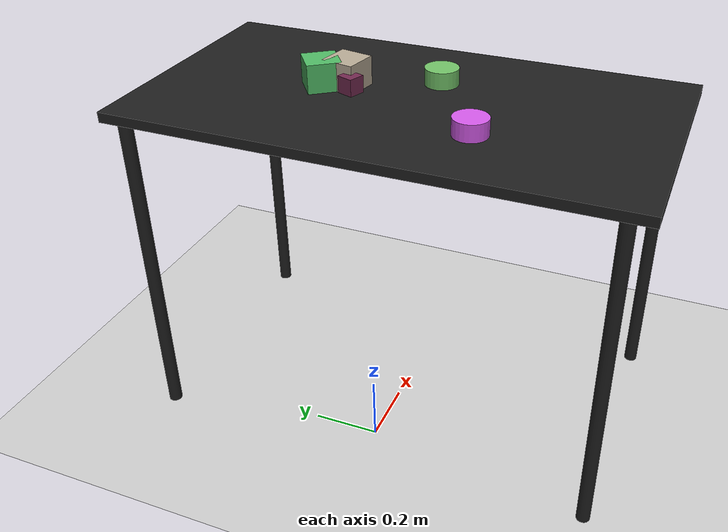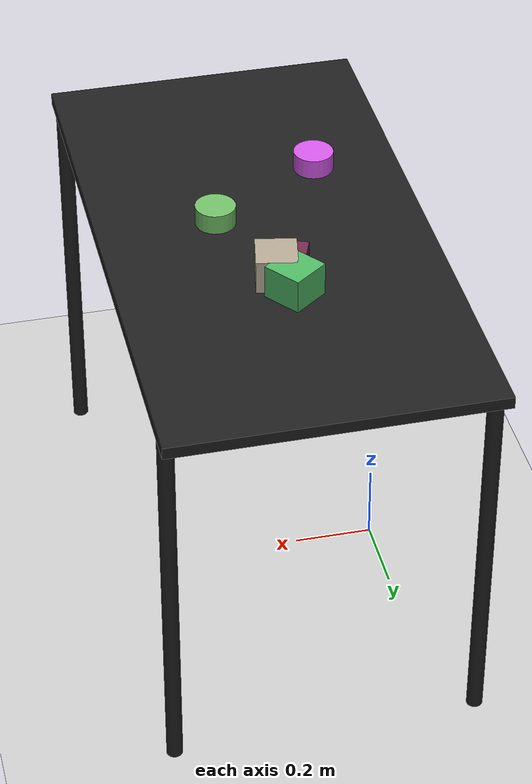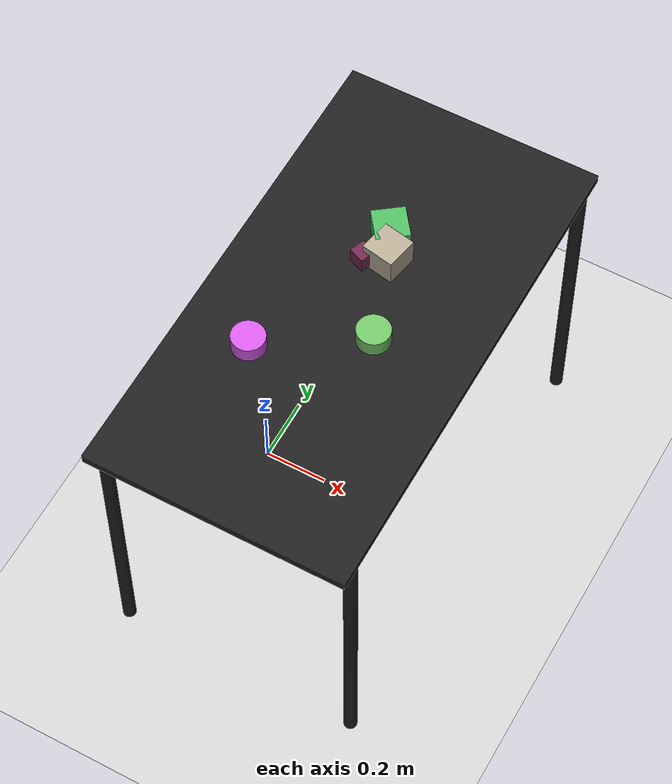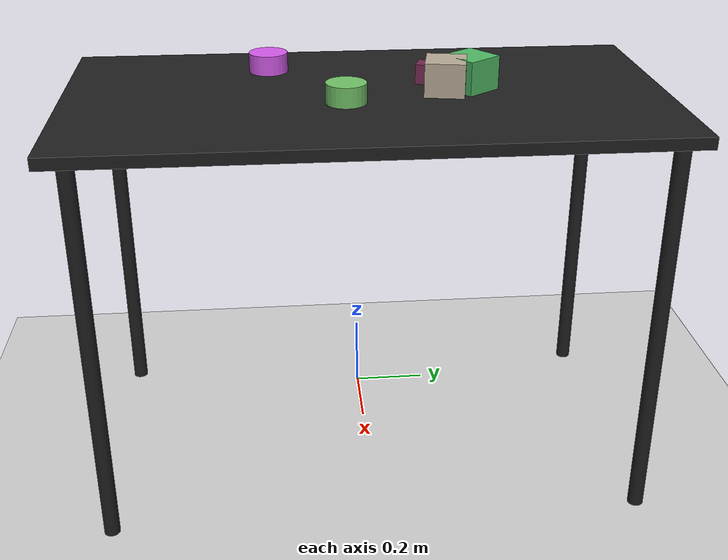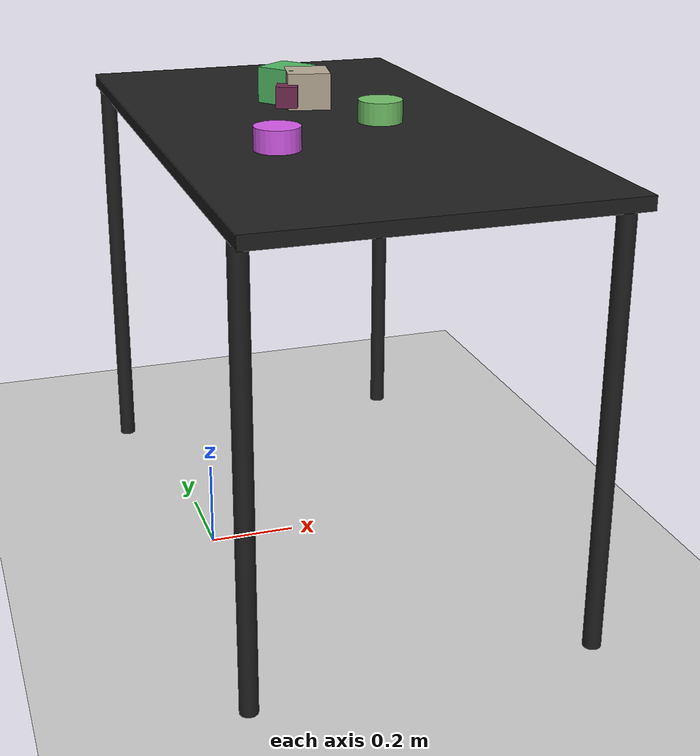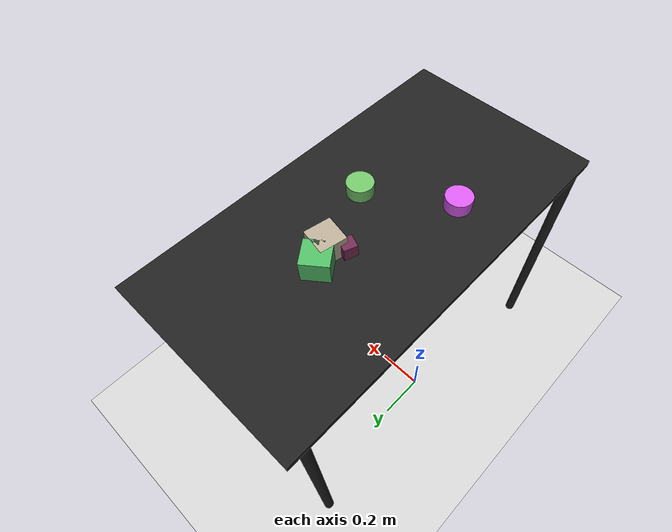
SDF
<?xml version="1.0" ?>
<sdf version="1.6">
  <world name="arm_world">
    <plugin filename="gz-sim-physics-system" name="gz::sim::systems::Physics">
      <engine>
        <filename>libgz-physics-bullet-featherstone-plugin.so</filename>
      </engine>
    </plugin>
    <plugin filename="gz-sim-user-commands-system" name="gz::sim::systems::UserCommands"/>
    <plugin filename="gz-sim-scene-broadcaster-system" name="gz::sim::systems::SceneBroadcaster"/>
    <plugin filename="gz-sim-sensors-system" name="gz::sim::systems::Sensors">
      <render_engine>ogre2</render_engine>
    </plugin>
    <gravity>0.0 0.0 -9.8</gravity>
    <scene>
      <shadows>false</shadows>
    </scene>
    <gui>
      <camera name="user_camera">
        <pose>0.75 -0.75 1.4 0 0.29 2.21</pose>
      </camera>
    </gui>
    <include>
      <uri>https://fuel.gazebosim.org/1.0/OpenRobotics/models/Sun</uri>
    </include>
    <model name="table">
      <static>true</static>
      <include>
        <uri>model://table</uri>
      </include>
      <pose>0.29 0 0 0 0 1.5708</pose>
    </model>
    <model name="ground_plane">
      <static>true</static>
      <link name="link">
        <collision name="collision">
          <geometry>
            <plane>
              <normal>0 0 1</normal>
            </plane>
          </geometry>
          <surface>
            <friction>
              <ode>
                <mu>1.0</mu>
                <mu2>1.0</mu2>
              </ode>
            </friction>
          </surface>
        </collision>
        <visual name="visual">
          <geometry>
            <plane>
              <normal>0 0 1</normal>
              <size>100 100</size>
            </plane>
          </geometry>
          <material>
            <ambient>0.8 0.8 0.8 1</ambient>
            <diffuse>0.8 0.8 0.8 1</diffuse>
            <specular>0.8 0.8 0.8 1</specular>
          </material>
        </visual>
      </link>
    </model>
    <model name="cube_l_0">
      <pose>0.306 0.197 1.05 0 0 2.95</pose>
      <link name="cube_l_0_link">
        <inertial>
          <mass>0.05</mass>
          <inertia>
            <ixx>2.04e-7</ixx>
            <iyy>2.04e-7</iyy>
            <izz>3.9e-8</izz>
            <ixy>0</ixy>
            <ixz>0</ixz>
            <iyz>0</iyz>
          </inertia>
        </inertial>
        <collision name="cube_l_0_collision">
          <geometry>
            <box>
              <size>0.1 0.1 0.1</size>
            </box>
          </geometry>
          <surface>
            <friction>
              <ode>
                <mu>0.8</mu>
                <mu2>0.8</mu2>
                <fdir1>0 0 1</fdir1>
                <slip1>0.001</slip1>
                <slip2>0.001</slip2>
              </ode>
              <torsional>
                <coefficient>0.1</coefficient>
                <surface_radius>0.015</surface_radius>
                <use_patch_radius>true</use_patch_radius>
              </torsional>
            </friction>
            <contact>
              <ode>
                <kp>1e5</kp>
                <kd>10</kd>
                <max_vel>0.1</max_vel>
                <min_depth>0.001</min_depth>
                <soft_cfm>0.01</soft_cfm>
                <soft_erp>0.2</soft_erp>
              </ode>
            </contact>
            <bounce>
              <restitution_coefficient>0.2</restitution_coefficient>
              <threshold>0.01</threshold>
            </bounce>
          </surface>
        </collision>
        <visual name="cube_l_0_visual">
          <geometry>
            <box>
              <size>0.1 0.1 0.1</size>
            </box>
          </geometry>
          <material>
            <ambient>0.71 0.66 0.58 1</ambient>
            <diffuse>0.71 0.66 0.58 1</diffuse>
          </material>
        </visual>
        <velocity_decay>
          <linear>1</linear>
          <angular>1</angular>
        </velocity_decay>
      </link>
    </model>
    <model name="cube_l_1">
      <pose>0.277 0.264 1.05 0 0 5.36</pose>
      <link name="cube_l_1_link">
        <inertial>
          <mass>0.05</mass>
          <inertia>
            <ixx>2.04e-7</ixx>
            <iyy>2.04e-7</iyy>
            <izz>3.9e-8</izz>
            <ixy>0</ixy>
            <ixz>0</ixz>
            <iyz>0</iyz>
          </inertia>
        </inertial>
        <collision name="cube_l_1_collision">
          <geometry>
            <box>
              <size>0.1 0.1 0.1</size>
            </box>
          </geometry>
          <surface>
            <friction>
              <ode>
                <mu>0.8</mu>
                <mu2>0.8</mu2>
                <fdir1>0 0 1</fdir1>
                <slip1>0.001</slip1>
                <slip2>0.001</slip2>
              </ode>
              <torsional>
                <coefficient>0.1</coefficient>
                <surface_radius>0.015</surface_radius>
                <use_patch_radius>true</use_patch_radius>
              </torsional>
            </friction>
            <contact>
              <ode>
                <kp>1e5</kp>
                <kd>10</kd>
                <max_vel>0.1</max_vel>
                <min_depth>0.001</min_depth>
                <soft_cfm>0.01</soft_cfm>
                <soft_erp>0.2</soft_erp>
              </ode>
            </contact>
            <bounce>
              <restitution_coefficient>0.2</restitution_coefficient>
              <threshold>0.01</threshold>
            </bounce>
          </surface>
        </collision>
        <visual name="cube_l_1_visual">
          <geometry>
            <box>
              <size>0.1 0.1 0.1</size>
            </box>
          </geometry>
          <material>
            <ambient>0.31 0.72 0.39 1</ambient>
            <diffuse>0.31 0.72 0.39 1</diffuse>
          </material>
        </visual>
        <velocity_decay>
          <linear>1</linear>
          <angular>1</angular>
        </velocity_decay>
      </link>
    </model>
    <model name="cylinder_l_2">
      <pose>0.398 -0.056 1.05 0 0 4.14</pose>
      <link name="cylinder_l_2_link">
        <inertial>
          <mass>0.05</mass>
          <inertia>
            <ixx>2.04e-7</ixx>
            <iyy>2.04e-7</iyy>
            <izz>3.9e-8</izz>
            <ixy>0</ixy>
            <ixz>0</ixz>
            <iyz>0</iyz>
          </inertia>
        </inertial>
        <collision name="cylinder_l_2_collision">
          <geometry>
            <cylinder>
              <radius>0.05</radius>
              <length>0.05</length>
            </cylinder>
          </geometry>
          <surface>
            <friction>
              <ode>
                <mu>0.8</mu>
                <mu2>0.8</mu2>
                <fdir1>0 0 1</fdir1>
                <slip1>0.001</slip1>
                <slip2>0.001</slip2>
              </ode>
              <torsional>
                <coefficient>0.1</coefficient>
                <surface_radius>0.015</surface_radius>
                <use_patch_radius>true</use_patch_radius>
              </torsional>
            </friction>
            <contact>
              <ode>
                <kp>1e5</kp>
                <kd>10</kd>
                <max_vel>0.1</max_vel>
                <min_depth>0.001</min_depth>
                <soft_cfm>0.01</soft_cfm>
                <soft_erp>0.2</soft_erp>
              </ode>
            </contact>
            <bounce>
              <restitution_coefficient>0.2</restitution_coefficient>
              <threshold>0.01</threshold>
            </bounce>
          </surface>
        </collision>
        <visual name="cylinder_l_2_visual">
          <geometry>
            <cylinder>
              <radius>0.05</radius>
              <length>0.05</length>
            </cylinder>
          </geometry>
          <material>
            <ambient>0.44 0.75 0.4 1</ambient>
            <diffuse>0.44 0.75 0.4 1</diffuse>
          </material>
        </visual>
        <velocity_decay>
          <linear>1</linear>
          <angular>1</angular>
        </velocity_decay>
      </link>
    </model>
    <model name="cube_m_3">
      <pose>0.246 0.159 1.05 0 0 2.78</pose>
      <link name="cube_m_3_link">
        <inertial>
          <mass>0.05</mass>
          <inertia>
            <ixx>2.04e-7</ixx>
            <iyy>2.04e-7</iyy>
            <izz>3.9e-8</izz>
            <ixy>0</ixy>
            <ixz>0</ixz>
            <iyz>0</iyz>
          </inertia>
        </inertial>
        <collision name="cube_m_3_collision">
          <geometry>
            <box>
              <size>0.05 0.05 0.05</size>
            </box>
          </geometry>
          <surface>
            <friction>
              <ode>
                <mu>0.8</mu>
                <mu2>0.8</mu2>
                <fdir1>0 0 1</fdir1>
                <slip1>0.001</slip1>
                <slip2>0.001</slip2>
              </ode>
              <torsional>
                <coefficient>0.1</coefficient>
                <surface_radius>0.015</surface_radius>
                <use_patch_radius>true</use_patch_radius>
              </torsional>
            </friction>
            <contact>
              <ode>
                <kp>1e5</kp>
                <kd>10</kd>
                <max_vel>0.1</max_vel>
                <min_depth>0.001</min_depth>
                <soft_cfm>0.01</soft_cfm>
                <soft_erp>0.2</soft_erp>
              </ode>
            </contact>
            <bounce>
              <restitution_coefficient>0.2</restitution_coefficient>
              <threshold>0.01</threshold>
            </bounce>
          </surface>
        </collision>
        <visual name="cube_m_3_visual">
          <geometry>
            <box>
              <size>0.05 0.05 0.05</size>
            </box>
          </geometry>
          <material>
            <ambient>0.44 0.16 0.31 1</ambient>
            <diffuse>0.44 0.16 0.31 1</diffuse>
          </material>
        </visual>
        <velocity_decay>
          <linear>1</linear>
          <angular>1</angular>
        </velocity_decay>
      </link>
    </model>
    <model name="cylinder_l_4">
      <pose>0.109 -0.238 1.05 0 0 2.63</pose>
      <link name="cylinder_l_4_link">
        <inertial>
          <mass>0.05</mass>
          <inertia>
            <ixx>2.04e-7</ixx>
            <iyy>2.04e-7</iyy>
            <izz>3.9e-8</izz>
            <ixy>0</ixy>
            <ixz>0</ixz>
            <iyz>0</iyz>
          </inertia>
        </inertial>
        <collision name="cylinder_l_4_collision">
          <geometry>
            <cylinder>
              <radius>0.05</radius>
              <length>0.05</length>
            </cylinder>
          </geometry>
          <surface>
            <friction>
              <ode>
                <mu>0.8</mu>
                <mu2>0.8</mu2>
                <fdir1>0 0 1</fdir1>
                <slip1>0.001</slip1>
                <slip2>0.001</slip2>
              </ode>
              <torsional>
                <coefficient>0.1</coefficient>
                <surface_radius>0.015</surface_radius>
                <use_patch_radius>true</use_patch_radius>
              </torsional>
            </friction>
            <contact>
              <ode>
                <kp>1e5</kp>
                <kd>10</kd>
                <max_vel>0.1</max_vel>
                <min_depth>0.001</min_depth>
                <soft_cfm>0.01</soft_cfm>
                <soft_erp>0.2</soft_erp>
              </ode>
            </contact>
            <bounce>
              <restitution_coefficient>0.2</restitution_coefficient>
              <threshold>0.01</threshold>
            </bounce>
          </surface>
        </collision>
        <visual name="cylinder_l_4_visual">
          <geometry>
            <cylinder>
              <radius>0.05</radius>
              <length>0.05</length>
            </cylinder>
          </geometry>
          <material>
            <ambient>0.83 0.35 0.91 1</ambient>
            <diffuse>0.83 0.35 0.91 1</diffuse>
          </material>
        </visual>
        <velocity_decay>
          <linear>1</linear>
          <angular>1</angular>
        </velocity_decay>
      </link>
    </model>
  </world>
</sdf>

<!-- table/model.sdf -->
<sdf version="1.5">
  <model name="table">
    <static>true</static>
    <link name="link">
      <collision name="surface">
        <pose>0 0 1.0 0 0 0</pose>
        <geometry>
          <box>
            <size>1.5 0.8 0.03</size>
          </box>
        </geometry>
        <surface>
          <friction>
            <ode>
              <mu>0.6</mu>
              <mu2>0.6</mu2>
            </ode>
          </friction>
        </surface>
      </collision>
      <visual name="surface">
        <pose>0 0 1.0 0 0 0</pose>
        <geometry>
          <box>
            <size>1.5 0.8 0.03</size>
          </box>
        </geometry>
        <material>
          <script>
            <uri>file://media/materials/scripts/gazebo.material</uri>
            <name>Gazebo/Black</name>
          </script>
        </material>
      </visual>
      <collision name="front_left_leg">
        <pose>0.68 0.38 0.5 0 0 0</pose>
        <geometry>
          <cylinder>
            <radius>0.02</radius>
            <length>1.0</length>
          </cylinder>
        </geometry>
      </collision>
      <visual name="front_left_leg">
        <pose>0.68 0.38 0.5 0 0 0</pose>
        <geometry>
          <cylinder>
            <radius>0.02</radius>
            <length>1.0</length>
          </cylinder>
        </geometry>
        <material>
          <script>
            <uri>file://media/materials/scripts/gazebo.material</uri>
            <name>Gazebo/Black</name>
          </script>
        </material>
      </visual>
      <collision name="front_right_leg">
        <pose>0.68 -0.38 0.5 0 0 0</pose>
        <geometry>
          <cylinder>
            <radius>0.02</radius>
            <length>1.0</length>
          </cylinder>
        </geometry>
      </collision>
      <visual name="front_right_leg">
        <pose>0.68 -0.38 0.5 0 0 0</pose>
        <geometry>
          <cylinder>
            <radius>0.02</radius>
            <length>1.0</length>
          </cylinder>
        </geometry>
        <material>
          <script>
            <uri>file://media/materials/scripts/gazebo.material</uri>
            <name>Gazebo/Black</name>
          </script>
        </material>
      </visual>
      <collision name="back_right_leg">
        <pose>-0.68 -0.38 0.5 0 0 0</pose>
        <geometry>
          <cylinder>
            <radius>0.02</radius>
            <length>1.0</length>
          </cylinder>
        </geometry>
      </collision>
      <visual name="back_right_leg">
        <pose>-0.68 -0.38 0.5 0 0 0</pose>
        <geometry>
          <cylinder>
            <radius>0.02</radius>
            <length>1.0</length>
          </cylinder>
        </geometry>
        <material>
          <script>
            <uri>file://media/materials/scripts/gazebo.material</uri>
            <name>Gazebo/Black</name>
          </script>
        </material>
      </visual>
      <collision name="back_left_leg">
        <pose>-0.68 0.38 0.5 0 0 0</pose>
        <geometry>
          <cylinder>
            <radius>0.02</radius>
            <length>1.0</length>
          </cylinder>
        </geometry>
      </collision>
      <visual name="back_left_leg">
        <pose>-0.68 0.38 0.5 0 0 0</pose>
        <geometry>
          <cylinder>
            <radius>0.02</radius>
            <length>1.0</length>
          </cylinder>
        </geometry>
        <material>
          <script>
            <uri>file://media/materials/scripts/gazebo.material</uri>
            <name>Gazebo/Black</name>
          </script>
        </material>
      </visual>
    </link>
  </model>
</sdf>
